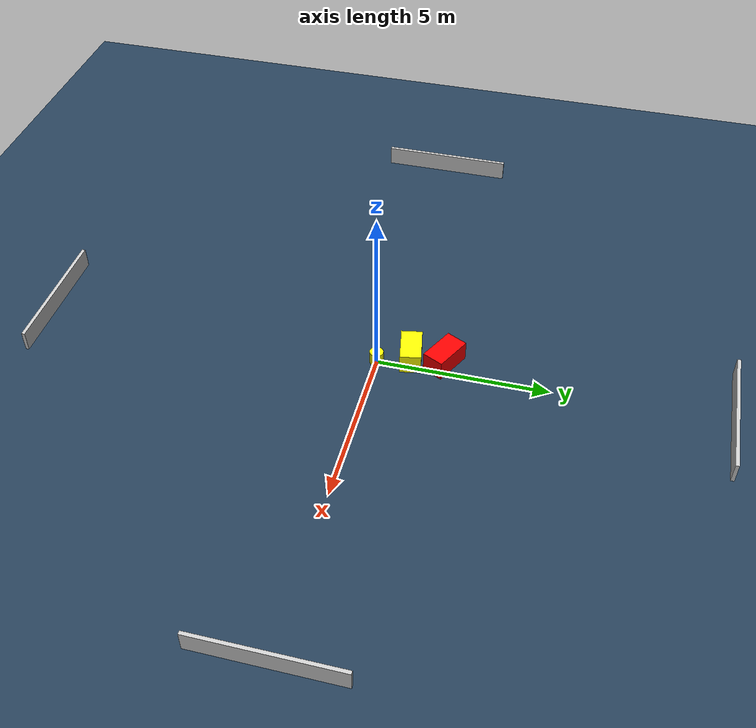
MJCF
<?xml version="1.0" ?>
<mujoco model="generated_environment">
  <option timestep="0.01" integrator="RK4" cone="elliptic"/>
  <default>
    <geom density="1"/>
  </default>
  <asset>
    <texture builtin="gradient" height="3072" name="skybox" rgb1="0.3 0.5 0.7" rgb2="0 0 0" type="skybox" width="512"/>
    <texture builtin="checker" height="300" name="groundplane" rgb1="0.2 0.3 0.4" rgb2="0.1 0.2 0.3" type="2d" width="300"/>
    <material name="groundplane" reflectance="0.2" texrepeat="5 5" texture="groundplane"/>
  </asset>
  <worldbody>
    <light dir="0 0 -1" directional="true" pos="0 0 1.5"/>
    <geom condim="3" friction="0.5 0.005 0.001" material="groundplane" name="floor" pos="0 0 0" size="0 0 0.05" type="plane"/>
    <body name="walls">
      <geom name="wall_1" condim="4" pos="-10.0 0.0 0.3" rgba="0.800000011920929 0.800000011920929 0.800000011920929 1.0" size="0.05 2.0 0.3" type="box"/>
      <geom name="wall_2" condim="4" pos="10.0 0.0 0.3" rgba="0.800000011920929 0.800000011920929 0.800000011920929 1.0" size="0.05 2.0 0.3" type="box"/>
      <geom name="wall_3" condim="4" pos="0.0 -10.0 0.3" rgba="0.800000011920929 0.800000011920929 0.800000011920929 1.0" size="2.0 0.05 0.3" type="box"/>
      <geom name="wall_4" condim="4" pos="0.0 10.0 0.3" rgba="0.800000011920929 0.800000011920929 0.800000011920929 1.0" size="2.0 0.05 0.3" type="box"/>
    </body>
    <body name="robot">
      <joint name="joint_x" type="slide" pos="0 0 0" axis="1 0 0"/>
      <joint name="joint_y" type="slide" pos="0 0 0" axis="0 1 0"/>
      <geom name="robot" type="cylinder" pos="0.0 0.0 0.2" size="0.2 0.2 0.0" mass="5.0" friction="1.0 0.005 0.0001" condim="4" rgba="1.0 1.0 0.0 1.0"/>
    </body>
    <body name="obstacle_1_movable">
      <geom name="obstacle_1_movable" condim="4" pos="-0.3411508225181185 0.9311826388178218 0.3" euler="0 0 100.5584269676951" friction="0.0 0.005 0.001" rgba="1.0 1.0 0.0 1.0" size="0.3060658198883865 0.5436499205699428 0.3" type="box" mass="0.1"/>
      <joint type="free"/>
    </body>
    <body name="obstacle_2_static">
      <geom name="obstacle_2_static" condim="4" pos="-0.4027004493115972 1.9006160319242267 0.3" euler="0 0 333.45004021143137" friction="0.0 0.005 0.001" rgba="1.0 0.0 0.0 1.0" size="0.5677443108166595 0.32415740375109253 0.3" type="box"/>
    </body>
  </worldbody>
  <actuator>
    <motor name="actuator_x" joint="joint_x" gear="1" ctrlrange="-1 1"/>
    <motor name="actuator_y" joint="joint_y" gear="1" ctrlrange="-1 1"/>
  </actuator>
</mujoco>
